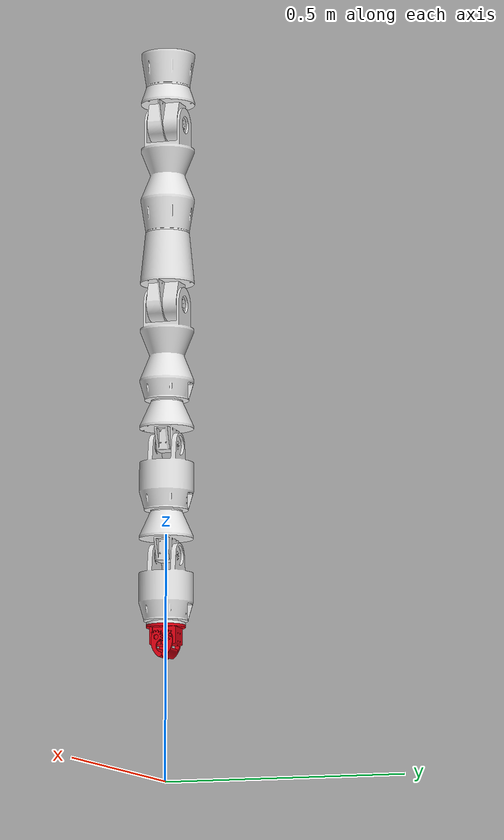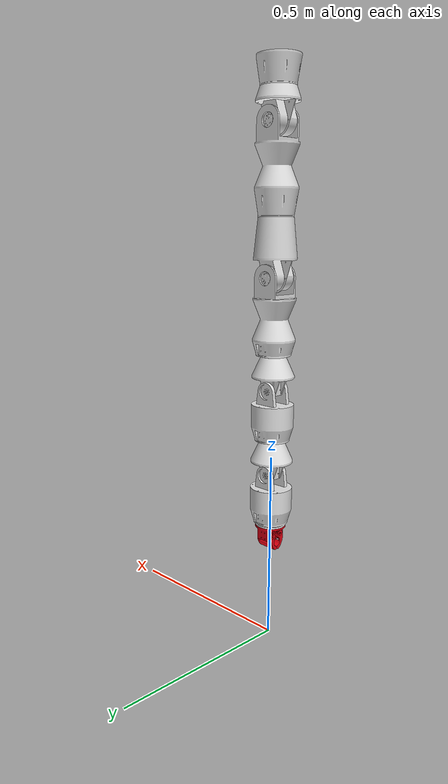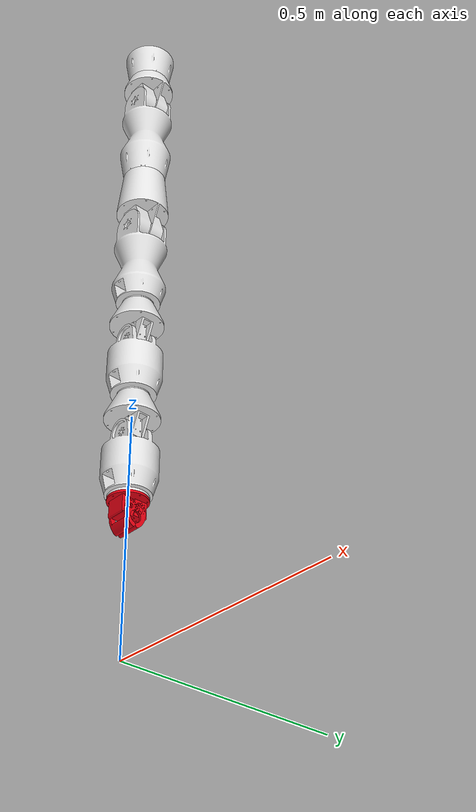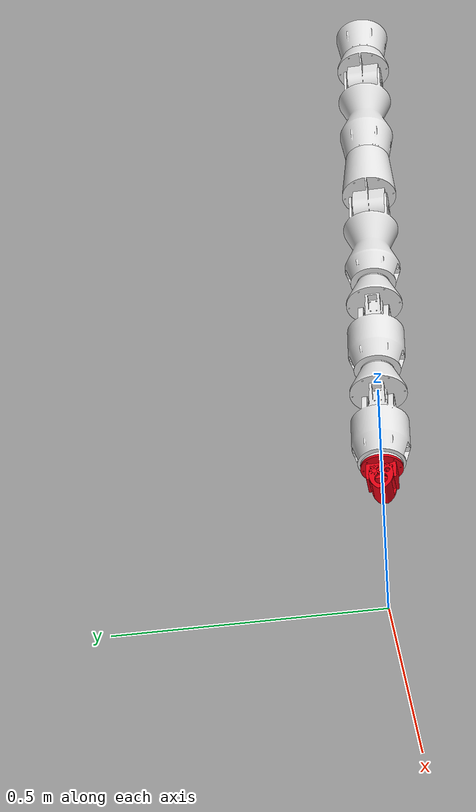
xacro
<?xml version="1.0"?>

<robot name="myrobot_10dof" xmlns:xacro="http://ros.org/wiki/xacro">
  <xacro:include filename="$(find myrobot_10dof_description)/urdf/myrobot_10dof.xacro"/>
  <xacro:include filename="$(find myrobot_10dof_description)/urdf/myrobot_10dof_hand.xacro"/>

  <!-- setting color -->
  <material name="white">
    <color rgba="0.9 0.9 0.9 1.0"/>
  </material>
  <material name="red">
    <color rgba="0.8984375 0.0 0.0703125 1"/>
  </material>

  <!-- setting torque / rotation speed -->
  <xacro:property name="EFFORT_LIMIT" value="4.0"/>
  <xacro:property name="VELOCITY_LIMIT" value="5.969211435"/>

  <xacro:arg name="use_gazebo_simulation" default="false" />
  <xacro:arg name="load_trans1" default="false" />
  <xacro:arg name="use_effort_right_arm" default="false" />

  <xacro:property name="right_arm_interface" value="position"/>
  <xacro:if value="$(arg use_effort_right_arm)">
    <xacro:property name="right_arm_interface" value="effort"/>
  </xacro:if>

  <xacro:if value="$(arg use_gazebo_simulation)">
    <xacro:include filename="$(find myrobot_10dof_description)/urdf/myrobot_10dof_gazebo.xacro"/>

    <xacro:if value="$(arg load_trans1)">
      <xacro:default_transmission joint_name="arm_joint02" interface="${right_arm_interface}"/>
      <xacro:default_transmission joint_name="arm_joint03" interface="${right_arm_interface}"/>
      <xacro:default_transmission joint_name="arm_joint04" interface="${right_arm_interface}"/>
      <xacro:default_transmission joint_name="arm_joint05" interface="${right_arm_interface}"/>
      <xacro:default_transmission joint_name="arm_joint06" interface="${right_arm_interface}"/>
      <xacro:default_transmission joint_name="arm_joint07" interface="${right_arm_interface}"/>
      <xacro:default_transmission joint_name="arm_joint08" interface="${right_arm_interface}"/>
      <xacro:default_transmission joint_name="arm_joint09" interface="${right_arm_interface}"/>
      <xacro:default_transmission joint_name="arm_joint10" interface="${right_arm_interface}"/>
      <xacro:default_transmission joint_name="hand_joint" interface="position"/>
    </xacro:if>
  </xacro:if>

  <!-- Used for fixing robot 'base_link'  to Gazebo 'world' -->
  <link name="world"/>

	<!-- connect base and world via three axes expressing mobile platform -->
	<link name="base_link"/>

	<joint name="base_link_to_world_joint" type="fixed">
    <parent link="world"/>
    <child link="base_link"/>
    <origin xyz="0 0 1.5" rpy="0 0 0"/>
  </joint>

  <xacro:myrobot_10dof
    arm_joint1_lower_limit="${radians(-90)}"
    arm_joint1_upper_limit="${radians(90)}"
    arm_joint2_lower_limit="${radians(-90)}"
    arm_joint2_upper_limit="${radians(90)}"
    arm_joint3_lower_limit="${radians(-90)}"
    arm_joint3_upper_limit="${radians(90)}"
    arm_joint4_lower_limit="${radians(-90)}"
    arm_joint4_upper_limit="${radians(90)}"
    arm_joint5_lower_limit="${radians(-90)}"
    arm_joint5_upper_limit="${radians(90)}"
    arm_joint6_lower_limit="${radians(-90)}"
    arm_joint6_upper_limit="${radians(90)}"
    arm_joint7_lower_limit="${radians(-90)}"
    arm_joint7_upper_limit="${radians(90)}"
    arm_joint8_lower_limit="${radians(-90)}"
    arm_joint8_upper_limit="${radians(90)}"
    arm_joint9_lower_limit="${radians(-90)}"
    arm_joint9_upper_limit="${radians(90)}"
    arm_joint10_lower_limit="${radians(-90)}"
    arm_joint10_upper_limit="${radians(90)}"
    arm_joints_effort_limit="${EFFORT_LIMIT}"
    arm_joints_velocity_limit="${VELOCITY_LIMIT}"
    arm_color="white">
  </xacro:myrobot_10dof>

  <xacro:myrobot_10dof_hand
    hand_joints_lower_limit="${radians(-90)}"
    hand_joints_upper_limit="${radians(0)}"
    hand_joints_effort_limit="${EFFORT_LIMIT}"
    hand_joints_velocity_limit="${VELOCITY_LIMIT}"
    hand_color="red">
  </xacro:myrobot_10dof_hand>
</robot>

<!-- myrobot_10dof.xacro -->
<robot xmlns:xacro="http://ros.org/wiki/xacro">

  <xacro:macro name="myrobot_10dof"
    params="arm_joint1_lower_limit
            arm_joint1_upper_limit
            arm_joint2_lower_limit
            arm_joint2_upper_limit
            arm_joint3_lower_limit
            arm_joint3_upper_limit
            arm_joint4_lower_limit
            arm_joint4_upper_limit
            arm_joint5_lower_limit
            arm_joint5_upper_limit
            arm_joint6_lower_limit
            arm_joint6_upper_limit
            arm_joint7_lower_limit
            arm_joint7_upper_limit
            arm_joint8_lower_limit
            arm_joint8_upper_limit
            arm_joint9_lower_limit
            arm_joint9_upper_limit
            arm_joint10_lower_limit
            arm_joint10_upper_limit
            arm_joints_effort_limit
            arm_joints_velocity_limit
            arm_color
            ">

    <!-- ================= Link 1 ================= -->
    <joint name="arm_joint01" type="fixed">
      <parent link="base_link" />
      <child link="link1" />
      <origin xyz="0 0 0" rpy="0 0 0"/>
    </joint>

    <link name="link1">
      <visual>
        <origin rpy="3.14159 0 0" xyz="0 0 0"/>
        <geometry>
          <mesh filename="package://myrobot_10dof_description/meshes/visual/com1.stl" scale="0.001 0.001 0.001"/>
        </geometry>
        <material name="${arm_color}"/>
      </visual>
      <collision>
        <origin rpy="3.14159 0 0" xyz="0 0 0"/>
        <geometry>
          <mesh filename="package://myrobot_10dof_description/meshes/collision/com1.stl" scale="0.001 0.001 0.001"/>
        </geometry>
      </collision>
      <inertial>
        <origin rpy="0 0 0" xyz="0 0 0"/>
        <inertia ixx="1e-4" ixy="0" ixz="0" iyy="1e-4" iyz="0" izz="1e-4"/>
        <mass value="0.25"/>
      </inertial>
    </link>

    <!-- ================= Link 2 ================= -->
    <joint name="arm_joint02" type="revolute">
      <parent link="link1" />
      <child link="link2" />
      <origin xyz="0 0 -0.0715" rpy="0 0 0"/>
      <limit lower="${arm_joint2_lower_limit}" upper="${arm_joint2_upper_limit}" effort="${arm_joints_effort_limit}" velocity="${arm_joints_velocity_limit}"/>
      <axis xyz="0 0 1"/>
      <dynamics damping="1.0e-6" friction="0.8"/>
    </joint>

    <link name="link2">
      <visual>
        <origin rpy="3.14159 0 0" xyz="0 0 0"/>
        <geometry>
          <mesh filename="package://myrobot_10dof_description/meshes/visual/com2.stl" scale="0.001 0.001 0.001"/>
        </geometry>
        <material name="${arm_color}"/>
      </visual>
      <collision>
        <origin rpy="3.14159 0 0" xyz="0 0 0"/>
        <geometry>
          <mesh filename="package://myrobot_10dof_description/meshes/collision/com2.stl" scale="0.001 0.001 0.001"/>
        </geometry>
      </collision>
      <inertial>
        <origin rpy="0 0 0" xyz="0 0 0"/>
        <inertia ixx="1e-4" ixy="0" ixz="0" iyy="1e-4" iyz="0" izz="1e-4"/>
        <mass value="0.2"/>
      </inertial>
    </link>

    <!-- ================= Link 3 ================= -->
    <joint name="arm_joint03" type="revolute">
      <parent link="link2" />
      <child link="link3" />
      <origin xyz="0 0 -0.08" rpy="0 0 0"/>
      <limit lower="${arm_joint3_lower_limit}" upper="${arm_joint3_upper_limit}" effort="${arm_joints_effort_limit}" velocity="${arm_joints_velocity_limit}"/>
      <axis xyz="0 1 0"/>
      <dynamics damping="1.0e-6" friction="0.8"/>
    </joint>

    <link name="link3">
      <visual>
        <origin rpy="3.14159 0 0" xyz="0 0 0"/>
        <geometry>
          <mesh filename="package://myrobot_10dof_description/meshes/visual/com3.stl" scale="0.001 0.001 0.001"/>
        </geometry>
        <material name="${arm_color}"/>
      </visual>
      <collision>
        <origin rpy="3.14159 0 0" xyz="0 0 0"/>
        <geometry>
          <mesh filename="package://myrobot_10dof_description/meshes/collision/com3.stl" scale="0.001 0.001 0.001"/>
        </geometry>
      </collision>
      <inertial>
        <origin rpy="0 0 0" xyz="0 0 0"/>
        <inertia ixx="1e-4" ixy="0" ixz="0" iyy="1e-4" iyz="0" izz="1e-4"/>
        <mass value="0.2"/>
      </inertial>
    </link>

    <!-- ================= Link 4 ================= -->
    <joint name="arm_joint04" type="revolute">
      <parent link="link3" />
      <child link="link4" />
      <origin xyz="0 0 -0.2265" rpy="0 0 0"/>
      <limit lower="${arm_joint4_lower_limit}" upper="${arm_joint4_upper_limit}" effort="${arm_joints_effort_limit}" velocity="${arm_joints_velocity_limit}"/>
      <axis xyz="0 0 1"/>
      <dynamics damping="1.0e-6" friction="0.8"/>
    </joint>

    <link name="link4">
      <visual>
        <origin rpy="3.14159 0 0" xyz="0 0 0"/>
        <geometry>
          <mesh filename="package://myrobot_10dof_description/meshes/visual/com4.stl" scale="0.001 0.001 0.001"/>
        </geometry>
        <material name="${arm_color}"/>
      </visual>
      <collision>
        <origin rpy="3.14159 0 0" xyz="0 0 0"/>
        <geometry>
          <mesh filename="package://myrobot_10dof_description/meshes/collision/com4.stl" scale="0.001 0.001 0.001"/>
        </geometry>
      </collision>
      <inertial>
        <origin rpy="0 0 0" xyz="0 0 0"/>
        <inertia ixx="1e-4" ixy="0" ixz="0" iyy="1e-4" iyz="0" izz="1e-4"/>
        <mass value="0.2"/>
      </inertial>
    </link>

    <!-- ================= Link 5 ================= -->
    <joint name="arm_joint05" type="revolute">
      <parent link="link4" />
      <child link="link5" />
      <origin xyz="0 0 -0.150" rpy="0 0 0"/>
      <limit lower="${arm_joint5_lower_limit}" upper="${arm_joint5_upper_limit}" effort="${arm_joints_effort_limit}" velocity="${arm_joints_velocity_limit}"/>
      <axis xyz="0 1 0"/>
      <dynamics damping="1.0e-6" friction="0.8"/>
    </joint>

    <link name="link5">
      <visual>
        <origin rpy="3.14159 0 0" xyz="0 0 0"/>
        <geometry>
          <mesh filename="package://myrobot_10dof_description/meshes/visual/com5.stl" scale="0.001 0.001 0.001"/>
        </geometry>
        <material name="${arm_color}"/>
      </visual>
      <collision>
        <origin rpy="3.14159 0 0" xyz="0 0 0"/>
        <geometry>
          <mesh filename="package://myrobot_10dof_description/meshes/collision/com5.stl" scale="0.001 0.001 0.001"/>
        </geometry>
      </collision>
      <inertial>
        <origin rpy="0 0 0" xyz="0 0 0"/>
        <inertia ixx="1e-4" ixy="0" ixz="0" iyy="1e-4" iyz="0" izz="1e-4"/>
        <mass value="0.2"/>
      </inertial>
    </link>

    <!-- ================= Link 6 ================= -->
    <joint name="arm_joint06" type="revolute">
      <parent link="link5" />
      <child link="link6" />
      <origin xyz="0 0 -0.2005" rpy="0 0 0"/>
      <limit lower="${arm_joint6_lower_limit}" upper="${arm_joint6_upper_limit}" effort="${arm_joints_effort_limit}" velocity="${arm_joints_velocity_limit}"/>
      <axis xyz="0 0 1"/>
      <dynamics damping="1.0e-6" friction="0.8"/>
    </joint>

    <link name="link6">
      <visual>
        <origin rpy="3.14159 0 0" xyz="0 0 0"/>
        <geometry>
          <mesh filename="package://myrobot_10dof_description/meshes/visual/com6.stl" scale="0.001 0.001 0.001"/>
        </geometry>
        <material name="${arm_color}"/>
      </visual>
      <collision>
        <origin rpy="3.14159 0 0" xyz="0 0 0"/>
        <geometry>
          <mesh filename="package://myrobot_10dof_description/meshes/collision/com6.stl" scale="0.001 0.001 0.001"/>
        </geometry>
      </collision>
      <inertial>
        <origin rpy="0 0 0" xyz="0 0 0"/>
        <inertia ixx="1e-4" ixy="0" ixz="0" iyy="1e-4" iyz="0" izz="1e-4"/>
        <mass value="0.15"/>
      </inertial>
    </link>

    <!-- ================= Link 7 ================= -->
    <joint name="arm_joint07" type="revolute">
      <parent link="link6" />
      <child link="link7" />
      <origin xyz="0 0 -0.09025" rpy="0 0 0"/>
      <limit lower="${arm_joint7_lower_limit}" upper="${arm_joint7_upper_limit}" effort="${arm_joints_effort_limit}" velocity="${arm_joints_velocity_limit}"/>
      <axis xyz="0 1 0"/>
      <dynamics damping="1.0e-6" friction="0.8"/>
    </joint>

    <link name="link7">
      <visual>
        <origin rpy="3.14159 0 0" xyz="0 0 0"/>
        <geometry>
          <mesh filename="package://myrobot_10dof_description/meshes/visual/com7.stl" scale="0.001 0.001 0.001"/>
        </geometry>
        <material name="${arm_color}"/>
      </visual>
      <collision>
        <origin rpy="3.14159 0 0" xyz="0 0 0"/>
        <geometry>
          <mesh filename="package://myrobot_10dof_description/meshes/collision/com7.stl" scale="0.001 0.001 0.001"/>
        </geometry>
      </collision>
      <inertial>
        <origin rpy="0 0 0" xyz="0 0 0"/>
        <inertia ixx="1e-4" ixy="0" ixz="0" iyy="1e-4" iyz="0" izz="1e-4"/>
        <mass value="0.1"/>
      </inertial>
    </link>

    <!-- ================= Link 8 ================= -->
    <joint name="arm_joint08" type="revolute">
      <parent link="link7" />
      <child link="link8" />
      <origin xyz="0 0 -0.1355" rpy="0 0 0"/>
      <limit lower="${arm_joint8_lower_limit}" upper="${arm_joint8_upper_limit}" effort="${arm_joints_effort_limit}" velocity="${arm_joints_velocity_limit}"/>
      <axis xyz="0 0 1"/>
      <dynamics damping="1.0e-6" friction="0.8"/>
    </joint>

    <link name="link8">
      <visual>
        <origin rpy="3.14159 0 0" xyz="0 0 0"/>
        <geometry>
          <mesh filename="package://myrobot_10dof_description/meshes/visual/com8.stl" scale="0.001 0.001 0.001"/>
        </geometry>
        <material name="${arm_color}"/>
      </visual>
      <collision>
        <origin rpy="3.14159 0 0" xyz="0 0 0"/>
        <geometry>
          <mesh filename="package://myrobot_10dof_description/meshes/collision/com8.stl" scale="0.001 0.001 0.001"/>
        </geometry>
      </collision>
      <inertial>
        <origin rpy="0 0 0" xyz="0 0 0"/>
        <inertia ixx="1e-4" ixy="0" ixz="0" iyy="1e-4" iyz="0" izz="1e-4"/>
        <mass value="0.1"/>
      </inertial>
    </link>

    <!-- ================= Link 9 ================= -->
    <joint name="arm_joint09" type="revolute">
      <parent link="link8" />
      <child link="link9" />
      <origin xyz="0 0 -0.09025" rpy="0 0 0"/>
      <limit lower="${arm_joint9_lower_limit}" upper="${arm_joint9_upper_limit}" effort="${arm_joints_effort_limit}" velocity="${arm_joints_velocity_limit}"/>
      <axis xyz="0 1 0"/>
      <dynamics damping="1.0e-6" friction="0.8"/>
    </joint>

    <link name="link9">
      <visual>
        <origin rpy="3.14159 0 0" xyz="0 0 0"/>
        <geometry>
          <mesh filename="package://myrobot_10dof_description/meshes/visual/com9.stl" scale="0.001 0.001 0.001"/>
        </geometry>
        <material name="${arm_color}"/>
      </visual>
      <collision>
        <origin rpy="3.14159 0 0" xyz="0 0 0"/>
        <geometry>
          <mesh filename="package://myrobot_10dof_description/meshes/collision/com9.stl" scale="0.001 0.001 0.001"/>
        </geometry>
      </collision>
      <inertial>
        <origin rpy="0 0 0" xyz="0 0 0"/>
        <inertia ixx="1e-4" ixy="0" ixz="0" iyy="1e-4" iyz="0" izz="1e-4"/>
        <mass value="0.1"/>
      </inertial>
    </link>

    <!-- ================= Link 10 ================= -->
    <joint name="arm_joint10" type="revolute">
      <parent link="link9" />
      <child link="link10" />
      <origin xyz="0 0 -0.14050" rpy="0 0 0"/>
      <limit lower="${arm_joint10_lower_limit}" upper="${arm_joint10_upper_limit}" effort="${arm_joints_effort_limit}" velocity="${arm_joints_velocity_limit}"/>
      <axis xyz="0 0 1"/>
      <dynamics damping="1.0e-6" friction="0.8"/>
    </joint>

    <!-- ================= Gazebo 設定 ================= -->
    <xacro:macro name="gazebo_material" params="link_name">
      <gazebo reference="${link_name}">
        <material>Gazebo/White</material>
      </gazebo>
    </xacro:macro>

    <xacro:gazebo_material link_name="link1"/>
    <xacro:gazebo_material link_name="link2"/>
    <xacro:gazebo_material link_name="link3"/>
    <xacro:gazebo_material link_name="link4"/>
    <xacro:gazebo_material link_name="link5"/>
    <xacro:gazebo_material link_name="link6"/>
    <xacro:gazebo_material link_name="link7"/>
    <xacro:gazebo_material link_name="link8"/>
    <xacro:gazebo_material link_name="link9"/>

  </xacro:macro>

</robot>

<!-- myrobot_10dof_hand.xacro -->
<robot xmlns:xacro="http://ros.org/wiki/xacro">

  <xacro:macro name="myrobot_10dof_hand"
    params="hand_joints_lower_limit
            hand_joints_upper_limit
            hand_joints_effort_limit
            hand_joints_velocity_limit
            hand_color
            ">

    <link name="link10">
      <visual>
        <origin rpy="3.14159 0 1.5708" xyz="0.0 0.0 0.0"/>
        <geometry>
          <mesh filename="package://myrobot_10dof_description/meshes/visual/com10C.stl" scale="0.001 0.001 0.001"/>
        </geometry>
        <material name="${hand_color}"/>
      </visual>
      <collision>
        <origin rpy="3.14159 0 1.5708" xyz="0.0 0.0 0.0"/>
        <geometry>
          <mesh filename="package://myrobot_10dof_description/meshes/collision/com10C.stl" scale="0.001 0.001 0.001"/>
        </geometry>
      </collision>
      <inertial>
        <origin rpy="1.5708 0 0" xyz="-0.118e-03 -20.65e-03 1.006e-03"/>
        <inertia ixx="32600.928e-09" ixy="-69.84e-09" ixz="-254.224e-09" iyy="41969.484e-09" iyz="-409.16e-09" izz="43040.018e-09"/>
        <mass value="121.0e-03"/>
      </inertial>
    </link>

    <joint name="hand_joint" type="revolute">
      <parent link="link10" />
      <child link="handA_link" />
      <origin xyz="0.0 -0.012 -0.02575" rpy="0 0 0"/>
      <limit
        lower="${hand_joints_lower_limit}"
        upper="${hand_joints_upper_limit}"
        effort="${hand_joints_effort_limit}"
        velocity="${hand_joints_velocity_limit}"/>
      <axis xyz="1 0 0"/>
      <dynamics damping="1.0e-6" friction="0.8"/>
    </joint>

    <link name="handA_link">
      <visual>
        <origin rpy="3.14159 0 -1.5708" xyz="0.0 0.0 0.0"/>
        <geometry>
          <mesh filename="package://myrobot_10dof_description/meshes/visual/com10A.stl" scale="0.001 0.001 0.001"/>
        </geometry>
        <material name="${hand_color}"/>
      </visual>
      <collision>
        <origin rpy="3.14159 0 -1.5708" xyz="0.0 0.0 0.0"/>
        <geometry>
          <mesh filename="package://myrobot_10dof_description/meshes/collision/com10A.stl" scale="0.001 0.001 0.001"/>
        </geometry>
      </collision>
      <inertial>
        <origin rpy="0 0 0" xyz="2.649e-03 -26.849e-03 3.757e-03"/>
        <inertia ixx="10192.75e-09" ixy="-197.895e-09" ixz="98.609e-09" iyy="5023.728e-09" iyz="-554.407e-09" izz="6322.202e-09"/>
        <mass value="15.8e-03"/>
      </inertial>
    </link>

    <joint name="hand_mimic_joint" type="revolute">
      <parent link="link10" />
      <child link="handB_link" />
      <origin xyz="0.0 0.012 -0.02575" rpy="0 0 0"/>
      <limit
        lower="${hand_joints_lower_limit}"
        upper="${hand_joints_upper_limit}"
        effort="${hand_joints_effort_limit}"
        velocity="${hand_joints_velocity_limit}"/>
      <axis xyz="-1 0 0"/>
      <mimic joint="hand_joint" multiplier="1" offset="0"/>
      <dynamics damping="1.0e-6" friction="0.8"/>
    </joint>

    <link name="handB_link">
      <visual>
        <origin rpy="3.14159 0 -1.5708" xyz="0.0 0.0 0.0"/>
        <geometry>
          <mesh filename="package://myrobot_10dof_description/meshes/visual/com10B.stl" scale="0.001 0.001 0.001"/>
        </geometry>
        <material name="${hand_color}"/>
      </visual>
      <collision>
        <origin rpy="3.14159 0 -1.5708" xyz="0.0 0.0 0.0"/>
        <geometry>
          <mesh filename="package://myrobot_10dof_description/meshes/collision/com10B.stl" scale="0.001 0.001 0.001"/>
        </geometry>
      </collision>
      <inertial>
        <origin rpy="0 0 0" xyz="-2.707e-03 -30.901e-03 2.845e-03"/>
        <inertia ixx="7483.7e-09" ixy="361.283e-09" ixz="-63.385e-09" iyy="4088.581e-09" iyz="-228.226e-09" izz="4372.991e-09"/>
        <mass value="13.9e-03"/>
      </inertial>
    </link>

    <gazebo reference="link10">
      <material>Gazebo/Red</material>
    </gazebo>
    <gazebo reference="handA_link">
      <material>Gazebo/Red</material>
    </gazebo>
    <gazebo reference="handB_link">
      <material>Gazebo/Red</material>
    </gazebo>

  </xacro:macro>

</robot>
